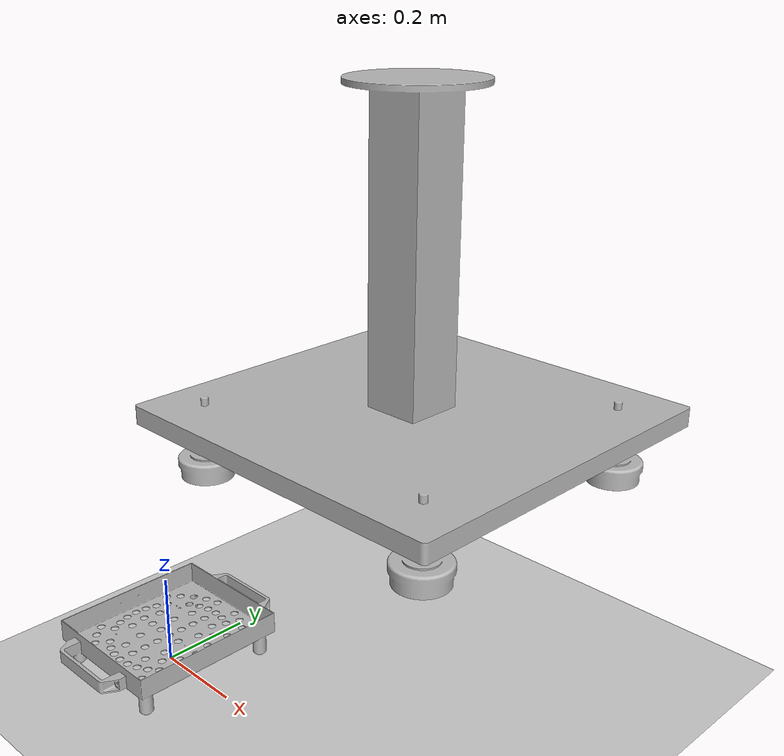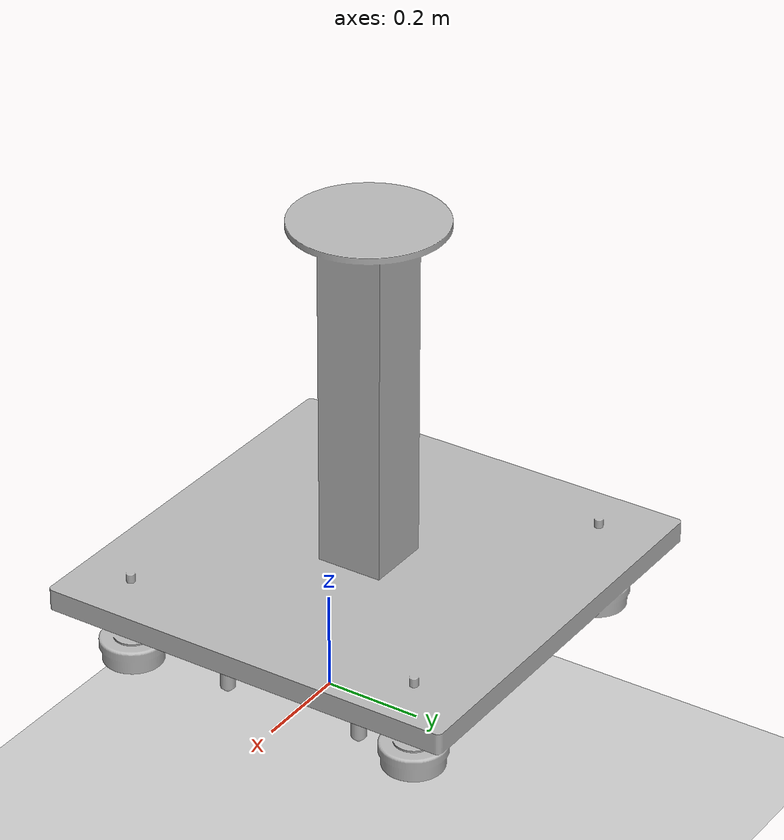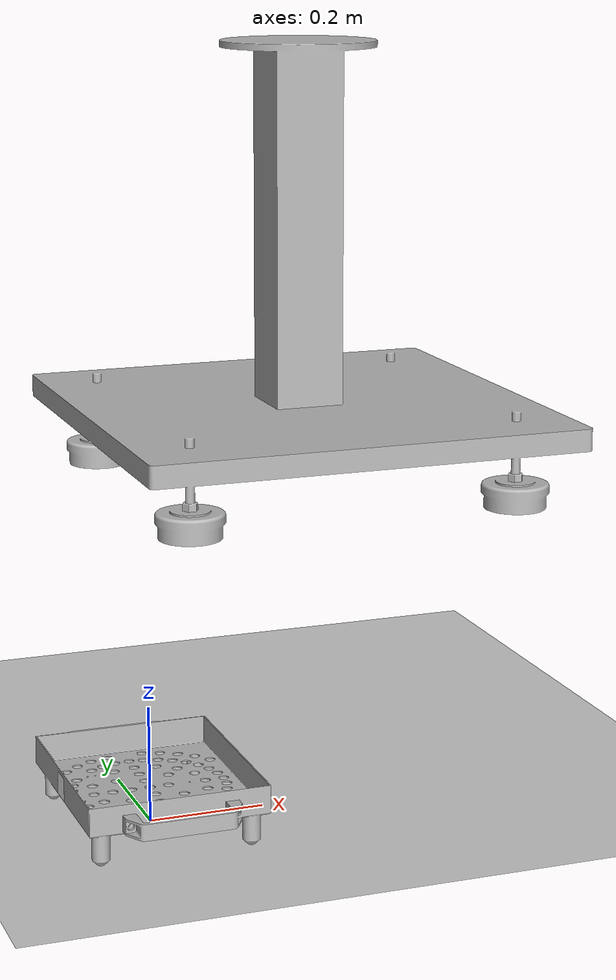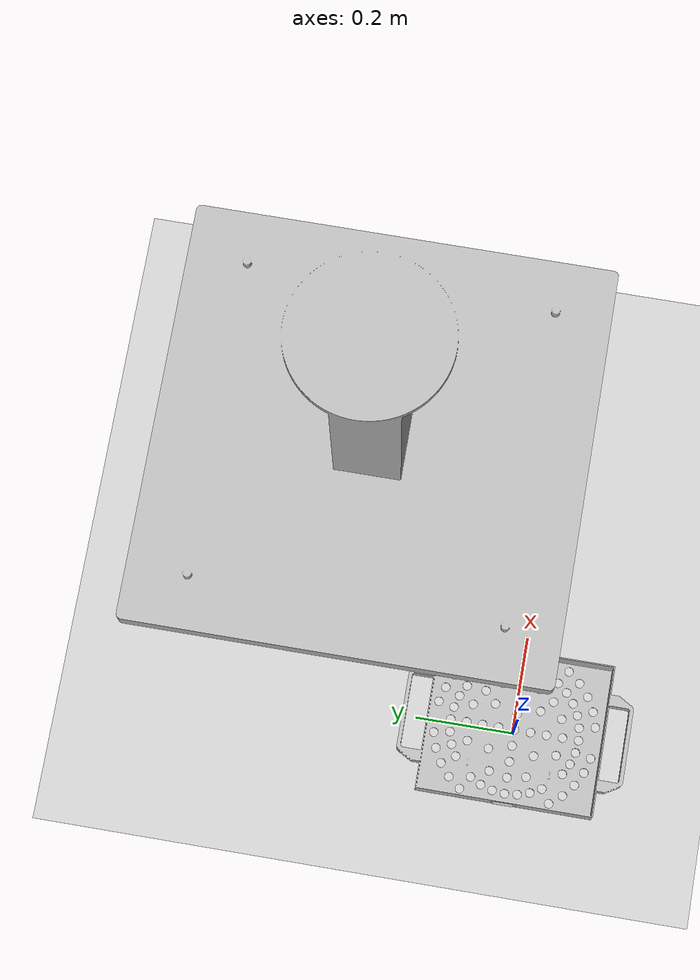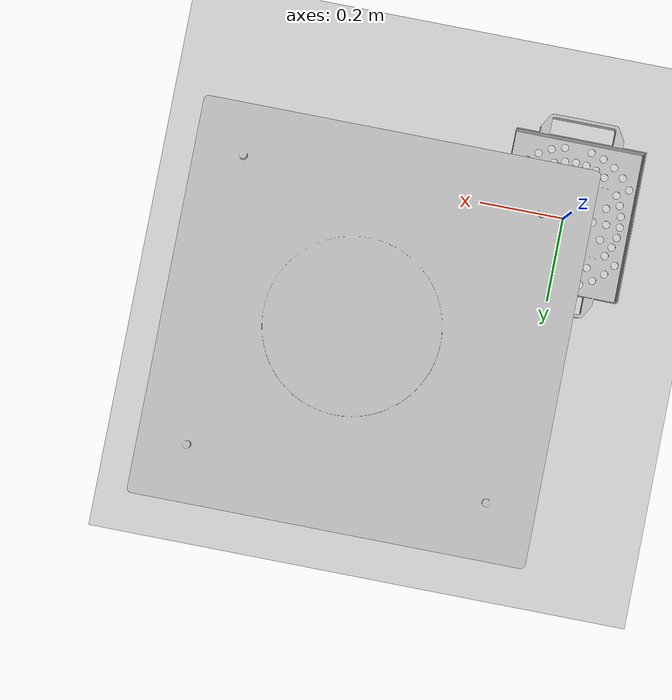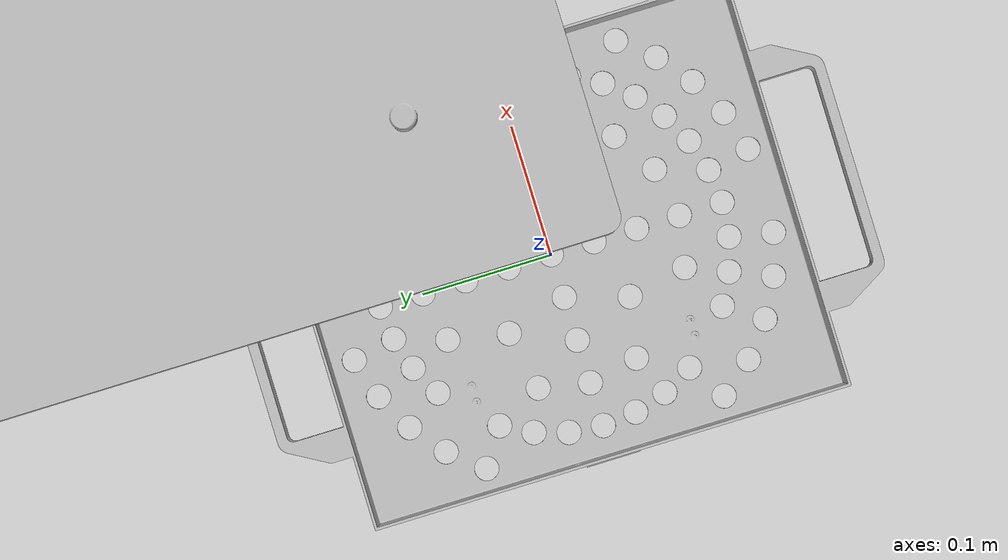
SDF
<sdf version="1.6">
 <world name="default">
  <light name="sun" type="directional">
   <pose>0 0 10 0 -0 0</pose>
   <diffuse>0.8 0.8 0.8 1</diffuse>
   <specular>0.2 0.2 0.2 1</specular>
   <attenuation>
    <range>1000</range>
    <constant>0.9</constant>
    <linear>0.01</linear>
    <quadratic>0.001</quadratic>
   </attenuation>
   <direction>-0.5 0.1 -0.9</direction>
  </light>
  <model name="ground_plane">
   <static>1</static>
   <link name="link">
    <collision name="collision">
     <geometry><plane><normal>0 0 1</normal><size>100 100</size></plane></geometry>
     <surface>
      <contact><collide_bitmask>65535</collide_bitmask></contact>
      <friction><ode><mu>100</mu><mu2>50</mu2></ode></friction>
     </surface>
     <max_contacts>99999999</max_contacts>
    </collision>
    <visual name="visual">
     <cast_shadows>0</cast_shadows>
     <geometry><plane><normal>0 0 1</normal><size>100 100</size></plane></geometry>
     <material>
      <script><uri>file://media/materials/scripts/gazebo.material</uri><name>Gazebo/Grey</name></script>
     </material>
    </visual>
   </link>
  </model>
  <gravity>0 0 -9.8</gravity>
  <magnetic_field>6e-06 2.3e-05 -4.2e-05</magnetic_field>
  <atmosphere type="adiabatic"/>
  <physics name="default_physics" default="0" type="ode">
   <max_contacts>100</max_contacts>
   <max_step_size>0.001</max_step_size>
   <real_time_factor>1</real_time_factor>
   <real_time_update_rate>1000</real_time_update_rate>
   <ode>
    <solver>
     <type>quick</type>
     <iters>50</iters>
     <sor>1.3</sor>
     <use_dynamic_moi_rescaling>0</use_dynamic_moi_rescaling>
    </solver>
    <constraints>
     <cfm>0</cfm>
     <erp>0.2</erp>
     <contact_max_correcting_vel>100</contact_max_correcting_vel>
     <contact_surface_layer>0.001</contact_surface_layer>
    </constraints>
   </ode>
  </physics>
  <scene><ambient>0.4 0.4 0.4 1</ambient><background>0.7 0.7 0.7 1</background><shadows>1</shadows></scene>
  <audio><device>default</device></audio>
  <spherical_coordinates>
   <surface_model>EARTH_WGS84</surface_model>
   <latitude_deg>0</latitude_deg>
   <longitude_deg>0</longitude_deg>
   <elevation>0</elevation>
   <heading_deg>0</heading_deg>
  </spherical_coordinates>
  <include><uri>model://UR10Base</uri><name>UR10Base</name></include>
  <include><uri>model://CssdTray0</uri><name>CssdTray0</name></include>
  <include><uri>model://CssdTray1</uri><name>CssdTray1</name></include>
  <include><uri>model://CssdTray2</uri><name>CssdTray2</name></include>
  <include><uri>model://CssdTray3</uri><name>CssdTray3</name></include>
 </world>
</sdf>

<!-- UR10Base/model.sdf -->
<sdf version="1.5">
  <model name="UR10Base">
    <static>true</static>
    <link name="link">
      <pose>0 0 0 0 0 0</pose>

        <visual name="visual">
          <geometry>
            <mesh>
              <scale>0.001 0.001 0.001</scale>
              <uri>model://UR10Base/meshes/base.obj</uri>
            </mesh>
          </geometry>
        </visual>

        <collision name="collision">
          <geometry>
            <mesh>
              <scale>0.001 0.001 0.001</scale>
              <uri>model://UR10Base/meshes/base.obj</uri>
            </mesh>
          </geometry>
        </collision>

    </link>
  </model>
</sdf>

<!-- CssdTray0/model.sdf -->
<sdf version='1.6'>
  <model name='CssdTray0'>
    <allow_auto_disable>0</allow_auto_disable>
    <static>0</static>

    <include>
      <uri>model://CssdTray</uri>
      <name>base</name>
    </include>

    <link name='aruco_tag'>
      <pose> -0.154 0.0 0.0824 0 -1.57 0.0</pose>

      <inertial>
        <mass>0.01</mass>
        <inertia>
          <ixx>0.001</ixx>
          <iyy>0.001</iyy>
          <izz>0.001</izz>
        </inertia>
      </inertial>

      <visual name='marker'>
        <geometry>
          <box>
            <size>0.04 0.04 1e-05</size>
          </box>
        </geometry>
        <material>
          <script>
            <uri>model://aruco_visual_marker_0/materials/scripts</uri>
            <uri>model://aruco_visual_marker_0/materials/textures</uri>
            <name>ArucoVisualMarker0/Marker</name>
          </script>
          <ambient>1 1 1 1</ambient>
          <diffuse>1 1 1 1</diffuse>
          <specular>0 0 0 1</specular>
          <emissive>1 1 1 0</emissive>
          <shader type='vertex'>
            <normal_map>__default__</normal_map>
          </shader>
        </material>
        <cast_shadows>1</cast_shadows>
        <transparency>0</transparency>
      </visual>
    </link>

    <joint name="aruco_tag_joint" type="revolute">
      <parent>base::tray</parent>
      <child>aruco_tag</child>

      <!-- Common hack to make this a "fixed" joint -->
      <axis>
        <limit>
          <lower>0.0</lower>
          <upper>0.0</upper>
        </limit>
      </axis>

    </joint>
  </model>
</sdf>

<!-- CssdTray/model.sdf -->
<sdf version="1.6">
  <model name="CssdTray">
    <static>false</static>
    <link name="tray">
      <pose> 0 0 0 0 0 3.14 </pose>
       <inertial>
         <!-- tentative mass -->
        <mass>5.0</mass>
        <pose>0 0 -0.01 0 0 0</pose>
        <inertia>
          <ixx>0.2026</ixx>
          <ixy>0</ixy>
          <ixz>0</ixz>
          <iyy>0.206</iyy>
          <iyz>0</iyz>
          <izz>0.255</izz>
        </inertia>
      </inertial>

      <!-- Extents: (+/- 0.15, +/- 0.175, [0.058, 0.06]),  -->
      <collision name="tray floor">
        <pose> 0.0  0.0  0.06  0.0  0.0  0.0</pose>
        <geometry>
          <box>
            <size>0.30 0.35 0.004</size>
          </box>
        </geometry>
        <surface>
          <contact>
            <ode>
              <kp>1000000.0</kp>
              <kd>1.0</kd>
              <mu1>0.8</mu1>
              <mu2>0.8</mu2>
              <maxVel>0.0</maxVel>
              <minDepth>0.001</minDepth>
            </ode>
          </contact>
        </surface>
      </collision>
      <collision name="tray pegs">
        <geometry>
          <mesh>
            <scale>1 1 1</scale>
            <uri>model://CssdTray/meshes/tray_pegs.stl</uri>
          </mesh>
        </geometry>
      </collision>

      <!-- Center Bottom: (0.128, 0.153, 0.01) -->
      <!-- radius: 0.015 -->
      <!-- height: 0.048-->
      <collision name="front left leg">
        <pose>0.128 0.153 0.034 0 0 0</pose>
        <geometry>
          <cylinder>
            <radius>0.015</radius>
            <length>0.048</length>
          </cylinder>
        </geometry>
      </collision>
      <collision name="front right leg">
        <pose>-0.128 0.153 0.034 0 0 0</pose>
        <geometry>
          <cylinder>
            <radius>0.015</radius>
            <length>0.048</length>
          </cylinder>
        </geometry>
      </collision>
      <collision name="back left leg">
        <pose>0.128 -0.153 0.034 0 0 0</pose>
        <geometry>
          <cylinder>
            <radius>0.015</radius>
            <length>0.048</length>
          </cylinder>
        </geometry>
      </collision>
      <collision name="back right leg">
        <pose>-0.128 -0.153 0.034 0 0 0</pose>
        <geometry>
          <cylinder>
            <radius>0.015</radius>
            <length>0.048</length>
          </cylinder>
        </geometry>
      </collision>

      <visual name='visual'>
        <geometry>
          <mesh>
            <scale>1 1 1</scale>
            <uri>model://CssdTray/meshes/Tray_Assem_Locating_Stand-off.STL</uri>
          </mesh>
        </geometry>
      </visual>
    </link>
  </model>
</sdf>

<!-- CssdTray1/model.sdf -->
<sdf version='1.6'>
  <model name='CssdTray1'>
    <allow_auto_disable>0</allow_auto_disable>
    <static>0</static>

    <include>
      <uri>model://CssdTray</uri>
      <name>base</name>
    </include>

    <include>
        <name>aruco_tag</name>
        <uri>model://aruco_visual_marker_1</uri>
        <pose> -0.154 0.0 0.0824 0 -1.57 0.0</pose>
        <static>true</static>
      </include>

      <joint name="aruco_tag_joint" type="revolute">
        <parent>base::tray</parent>
        <child>aruco_tag::marker</child>
        <!-- Common hack to make this a "fixed" joint -->
        <axis>
          <limit>
            <lower>0.0</lower>
            <upper>0.0</upper>
          </limit>
        </axis>

    </joint>
  </model>
</sdf>

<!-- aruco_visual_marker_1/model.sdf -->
<sdf version='1.5'>
  <model name='aruco_visual_marker_1'>

    <link name='marker'>
      <pose frame=''>0 0 0 0 0 0</pose>
      <visual name='visual'>
        <geometry>
          <box>
            <size>0.04 0.04 1e-5</size>
          </box>
        </geometry>
        <material>
          <script>
            <uri>model://aruco_visual_marker_1/materials/scripts</uri>
            <uri>model://aruco_visual_marker_1/materials/textures</uri>
            <name>ArucoVisualMarker1/Marker</name>
          </script>
          <ambient>1 1 1 1</ambient>
          <diffuse>1 1 1 1</diffuse>
          <specular>0 0 0 1</specular>
          <emissive>1 1 1 0</emissive>
          <shader type='vertex'>
            <normal_map>__default__</normal_map>
          </shader>
        </material>
        <pose frame=''>0 0 0 0 -0 0</pose>
        <cast_shadows>1</cast_shadows>
        <transparency>0</transparency>
      </visual>
        <laser_retro>0</laser_retro>
        <max_contacts>10</max_contacts>
        <pose frame=''>0 0 0 0 -0 0</pose>
        <geometry>
          <box>
            <size>0.04 0.04 1e-05</size>
          </box>
        </geometry>
    </link>

    <link name='marker_pad'>
      <pose frame='marker'>0 0 -1e-5 0 -0 0</pose>
      <visual name='visual'>
        <geometry>
          <box>
            <size>0.04 0.04 1e-5</size>
          </box>
        </geometry>
        <material>
          <lighting>1</lighting>
          <script>
            <uri>file://media/materials/scripts/gazebo.material</uri>
            <name>Gazebo/White</name>
          </script>
          <ambient>0.3 0.3 0.3 1</ambient>
          <diffuse>0.7 0.7 0.7 1</diffuse>
          <specular>0.01 0.01 0.01 1</specular>
          <emissive>1 1 1 0</emissive>
          <shader type='vertex'>
            <normal_map>__default__</normal_map>
          </shader>
        </material>
        <cast_shadows>1</cast_shadows>
        <transparency>0</transparency>
      </visual>
        <laser_retro>0</laser_retro>
        <max_contacts>10</max_contacts>
        <pose frame=''>0 0 0 0 -0 0</pose>
        <geometry>
          <box>
            <size>0.04 0.04 1e-5</size>
          </box>
        </geometry>
    </link>

    <joint name='marker_JOINT_marker_pad' type='revolute'>
      <parent>marker</parent>
      <child>marker_pad</child>
      <pose frame=''>0 0 0 0 -0 0</pose>
      <axis>
        <xyz>0 0 1</xyz>
        <limit>
          <upper>0</upper>
          <lower>0</lower>
        </limit>
      </axis>
    </joint>

    <static>1</static>
    <allow_auto_disable>1</allow_auto_disable>

  </model>
</sdf>

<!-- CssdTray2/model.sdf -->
<sdf version='1.6'>
  <model name='CssdTray2'>
    <allow_auto_disable>0</allow_auto_disable>
    <static>0</static>

    <include>
      <uri>model://CssdTray</uri>
      <name>base</name>
    </include>

    <link name='aruco_tag'>
      <pose> -0.154 0.0 0.0824 0 -1.57 0.0</pose>

      <inertial>
        <mass>0.01</mass>
        <inertia>
          <ixx>0.001</ixx>
          <iyy>0.001</iyy>
          <izz>0.001</izz>
        </inertia>
      </inertial>

      <visual name='marker'>
        <geometry>
          <box>
            <size>0.04 0.04 1e-05</size>
          </box>
        </geometry>
        <material>
          <script>
            <uri>model://aruco_visual_marker_2/materials/scripts</uri>
            <uri>model://aruco_visual_marker_2/materials/textures</uri>
            <name>ArucoVisualMarker2/Marker</name>
          </script>
          <ambient>1 1 1 1</ambient>
          <diffuse>1 1 1 1</diffuse>
          <specular>0 0 0 1</specular>
          <emissive>1 1 1 0</emissive>
          <shader type='vertex'>
            <normal_map>__default__</normal_map>
          </shader>
        </material>
        <cast_shadows>1</cast_shadows>
        <transparency>0</transparency>
      </visual>
    </link>

    <joint name="aruco_tag_joint" type="revolute">
      <parent>base::tray</parent>
      <child>aruco_tag</child>

      <!-- Common hack to make this a "fixed" joint -->
      <axis>
        <limit>
          <lower>0.0</lower>
          <upper>0.0</upper>
        </limit>
      </axis>

    </joint>
  </model>
</sdf>

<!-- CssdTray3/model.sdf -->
<sdf version='1.6'>
  <model name='CssdTray3'>
    <allow_auto_disable>0</allow_auto_disable>
    <static>0</static>

    <include>
      <uri>model://CssdTray</uri>
      <name>base</name>
    </include>

    <link name='aruco_tag'>
      <pose> -0.154 0.0 0.0824 0 -1.57 0.0</pose>

      <inertial>
        <mass>0.01</mass>
        <inertia>
          <ixx>0.001</ixx>
          <iyy>0.001</iyy>
          <izz>0.001</izz>
        </inertia>
      </inertial>

      <visual name='marker'>
        <geometry>
          <box>
            <size>0.04 0.04 1e-05</size>
          </box>
        </geometry>
        <material>
          <script>
            <uri>model://aruco_visual_marker_3/materials/scripts</uri>
            <uri>model://aruco_visual_marker_3/materials/textures</uri>
            <name>ArucoVisualMarker3/Marker</name>
          </script>
          <ambient>1 1 1 1</ambient>
          <diffuse>1 1 1 1</diffuse>
          <specular>0 0 0 1</specular>
          <emissive>1 1 1 0</emissive>
          <shader type='vertex'>
            <normal_map>__default__</normal_map>
          </shader>
        </material>
        <cast_shadows>1</cast_shadows>
        <transparency>0</transparency>
      </visual>
    </link>

    <joint name="aruco_tag_joint" type="revolute">
      <parent>base::tray</parent>
      <child>aruco_tag</child>

      <!-- Common hack to make this a "fixed" joint -->
      <axis>
        <limit>
          <lower>0.0</lower>
          <upper>0.0</upper>
        </limit>
      </axis>

    </joint>
  </model>
</sdf>
